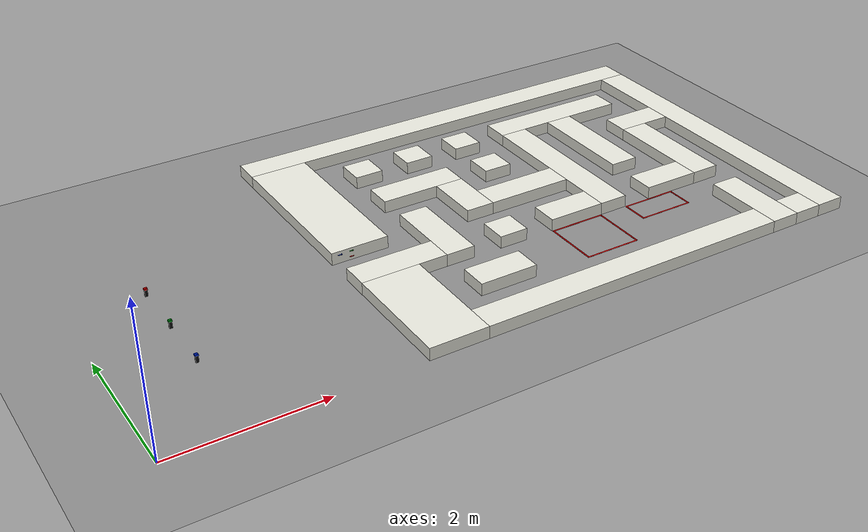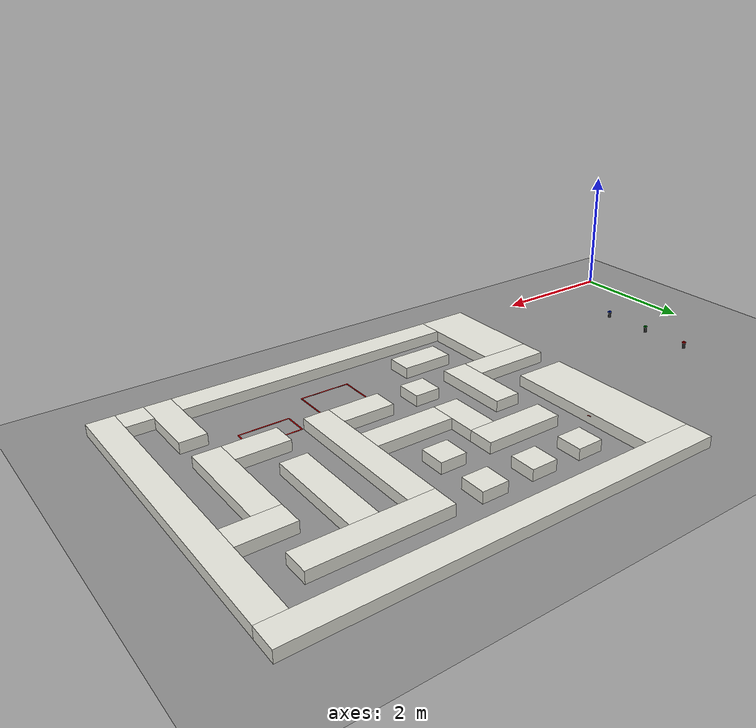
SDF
<sdf version="1.9">
 <world name="ros2_world">
  <model name="ground_plane">
   <static>true</static>
   <link name="link">
    <collision name="collision">
     <geometry><plane><normal>0 0 1</normal><size>30 30</size></plane></geometry>
    </collision>
    <visual name="visual">
     <geometry><plane><normal>0 0 1</normal><size>30 30</size></plane></geometry>
     <material><ambient>0.55 0.55 0.55 1</ambient><diffuse>0.55 0.55 0.55 1</diffuse></material>
    </visual>
   </link>
  </model>
  <model name="paredes">
   <static>true</static>
   <link name="bloque_0">
    <pose>6.4 5 0.085 0 0 0</pose>
    <collision name="colision"><geometry><box><size>6.4 0.4 0.17</size></box></geometry></collision>
    <visual name="visual">
     <geometry><box><size>6.4 0.4 0.17</size></box></geometry>
     <material><ambient>0.9 0.9 0.86 1</ambient><diffuse>0.9 0.9 0.86 1</diffuse></material>
    </visual>
   </link>
   <link name="bloque_1">
    <pose>3.6 3.6 0.085 0 0 0</pose>
    <collision name="colision"><geometry><box><size>0.8 2.4 0.17</size></box></geometry></collision>
    <visual name="visual">
     <geometry><box><size>0.8 2.4 0.17</size></box></geometry>
     <material><ambient>0.9 0.9 0.86 1</ambient><diffuse>0.9 0.9 0.86 1</diffuse></material>
    </visual>
   </link>
   <link name="bloque_2">
    <pose>9.4 2.4 0.085 0 0 0</pose>
    <collision name="colision"><geometry><box><size>0.4 4.8 0.17</size></box></geometry></collision>
    <visual name="visual">
     <geometry><box><size>0.4 4.8 0.17</size></box></geometry>
     <material><ambient>0.9 0.9 0.86 1</ambient><diffuse>0.9 0.9 0.86 1</diffuse></material>
    </visual>
   </link>
   <link name="bloque_3">
    <pose>4.6 4.2 0.085 0 0 0</pose>
    <collision name="colision"><geometry><box><size>0.4 0.4 0.17</size></box></geometry></collision>
    <visual name="visual">
     <geometry><box><size>0.4 0.4 0.17</size></box></geometry>
     <material><ambient>0.9 0.9 0.86 1</ambient><diffuse>0.9 0.9 0.86 1</diffuse></material>
    </visual>
   </link>
   <link name="bloque_4">
    <pose>5.4 4.2 0.085 0 0 0</pose>
    <collision name="colision"><geometry><box><size>0.4 0.4 0.17</size></box></geometry></collision>
    <visual name="visual">
     <geometry><box><size>0.4 0.4 0.17</size></box></geometry>
     <material><ambient>0.9 0.9 0.86 1</ambient><diffuse>0.9 0.9 0.86 1</diffuse></material>
    </visual>
   </link>
   <link name="bloque_5">
    <pose>6.2 4.2 0.085 0 0 0</pose>
    <collision name="colision"><geometry><box><size>0.4 0.4 0.17</size></box></geometry></collision>
    <visual name="visual">
     <geometry><box><size>0.4 0.4 0.17</size></box></geometry>
     <material><ambient>0.9 0.9 0.86 1</ambient><diffuse>0.9 0.9 0.86 1</diffuse></material>
    </visual>
   </link>
   <link name="bloque_6">
    <pose>7.8 4.2 0.085 0 0 0</pose>
    <collision name="colision"><geometry><box><size>2 0.4 0.17</size></box></geometry></collision>
    <visual name="visual">
     <geometry><box><size>2 0.4 0.17</size></box></geometry>
     <material><ambient>0.9 0.9 0.86 1</ambient><diffuse>0.9 0.9 0.86 1</diffuse></material>
    </visual>
   </link>
   <link name="bloque_7">
    <pose>7 2.8 0.085 0 0 0</pose>
    <collision name="colision"><geometry><box><size>0.4 2.4 0.17</size></box></geometry></collision>
    <visual name="visual">
     <geometry><box><size>0.4 2.4 0.17</size></box></geometry>
     <material><ambient>0.9 0.9 0.86 1</ambient><diffuse>0.9 0.9 0.86 1</diffuse></material>
    </visual>
   </link>
   <link name="bloque_8">
    <pose>7.8 3.2 0.085 0 0 0</pose>
    <collision name="colision"><geometry><box><size>0.4 1.6 0.17</size></box></geometry></collision>
    <visual name="visual">
     <geometry><box><size>0.4 1.6 0.17</size></box></geometry>
     <material><ambient>0.9 0.9 0.86 1</ambient><diffuse>0.9 0.9 0.86 1</diffuse></material>
    </visual>
   </link>
   <link name="bloque_9">
    <pose>5 3.4 0.085 0 0 0</pose>
    <collision name="colision"><geometry><box><size>1.2 0.4 0.17</size></box></geometry></collision>
    <visual name="visual">
     <geometry><box><size>1.2 0.4 0.17</size></box></geometry>
     <material><ambient>0.9 0.9 0.86 1</ambient><diffuse>0.9 0.9 0.86 1</diffuse></material>
    </visual>
   </link>
   <link name="bloque_10">
    <pose>6.2 3.4 0.085 0 0 0</pose>
    <collision name="colision"><geometry><box><size>0.4 0.4 0.17</size></box></geometry></collision>
    <visual name="visual">
     <geometry><box><size>0.4 0.4 0.17</size></box></geometry>
     <material><ambient>0.9 0.9 0.86 1</ambient><diffuse>0.9 0.9 0.86 1</diffuse></material>
    </visual>
   </link>
   <link name="bloque_11">
    <pose>8.8 3.4 0.085 0 0 0</pose>
    <collision name="colision"><geometry><box><size>0.8 0.4 0.17</size></box></geometry></collision>
    <visual name="visual">
     <geometry><box><size>0.8 0.4 0.17</size></box></geometry>
     <material><ambient>0.9 0.9 0.86 1</ambient><diffuse>0.9 0.9 0.86 1</diffuse></material>
    </visual>
   </link>
   <link name="bloque_12">
    <pose>5.4 2.8 0.085 0 0 0</pose>
    <collision name="colision"><geometry><box><size>0.4 0.8 0.17</size></box></geometry></collision>
    <visual name="visual">
     <geometry><box><size>0.4 0.8 0.17</size></box></geometry>
     <material><ambient>0.9 0.9 0.86 1</ambient><diffuse>0.9 0.9 0.86 1</diffuse></material>
    </visual>
   </link>
   <link name="bloque_13">
    <pose>8.6 2.4 0.085 0 0 0</pose>
    <collision name="colision"><geometry><box><size>0.4 1.6 0.17</size></box></geometry></collision>
    <visual name="visual">
     <geometry><box><size>0.4 1.6 0.17</size></box></geometry>
     <material><ambient>0.9 0.9 0.86 1</ambient><diffuse>0.9 0.9 0.86 1</diffuse></material>
    </visual>
   </link>
   <link name="bloque_14">
    <pose>4.6 2.2 0.085 0 0 0</pose>
    <collision name="colision"><geometry><box><size>0.4 1.2 0.17</size></box></geometry></collision>
    <visual name="visual">
     <geometry><box><size>0.4 1.2 0.17</size></box></geometry>
     <material><ambient>0.9 0.9 0.86 1</ambient><diffuse>0.9 0.9 0.86 1</diffuse></material>
    </visual>
   </link>
   <link name="bloque_15">
    <pose>6.2 2.6 0.085 0 0 0</pose>
    <collision name="colision"><geometry><box><size>1.2 0.4 0.17</size></box></geometry></collision>
    <visual name="visual">
     <geometry><box><size>1.2 0.4 0.17</size></box></geometry>
     <material><ambient>0.9 0.9 0.86 1</ambient><diffuse>0.9 0.9 0.86 1</diffuse></material>
    </visual>
   </link>
   <link name="bloque_16">
    <pose>3.8 1.8 0.085 0 0 0</pose>
    <collision name="colision"><geometry><box><size>1.2 0.4 0.17</size></box></geometry></collision>
    <visual name="visual">
     <geometry><box><size>1.2 0.4 0.17</size></box></geometry>
     <material><ambient>0.9 0.9 0.86 1</ambient><diffuse>0.9 0.9 0.86 1</diffuse></material>
    </visual>
   </link>
   <link name="bloque_17">
    <pose>5.4 1.8 0.085 0 0 0</pose>
    <collision name="colision"><geometry><box><size>0.4 0.4 0.17</size></box></geometry></collision>
    <visual name="visual">
     <geometry><box><size>0.4 0.4 0.17</size></box></geometry>
     <material><ambient>0.9 0.9 0.86 1</ambient><diffuse>0.9 0.9 0.86 1</diffuse></material>
    </visual>
   </link>
   <link name="bloque_18">
    <pose>6.4 1.8 0.085 0 0 0</pose>
    <collision name="colision"><geometry><box><size>0.8 0.4 0.17</size></box></geometry></collision>
    <visual name="visual">
     <geometry><box><size>0.8 0.4 0.17</size></box></geometry>
     <material><ambient>0.9 0.9 0.86 1</ambient><diffuse>0.9 0.9 0.86 1</diffuse></material>
    </visual>
   </link>
   <link name="bloque_19">
    <pose>8 1.8 0.085 0 0 0</pose>
    <collision name="colision"><geometry><box><size>0.8 0.4 0.17</size></box></geometry></collision>
    <visual name="visual">
     <geometry><box><size>0.8 0.4 0.17</size></box></geometry>
     <material><ambient>0.9 0.9 0.86 1</ambient><diffuse>0.9 0.9 0.86 1</diffuse></material>
    </visual>
   </link>
   <link name="bloque_20">
    <pose>3.6 0.8 0.085 0 0 0</pose>
    <collision name="colision"><geometry><box><size>0.8 1.6 0.17</size></box></geometry></collision>
    <visual name="visual">
     <geometry><box><size>0.8 1.6 0.17</size></box></geometry>
     <material><ambient>0.9 0.9 0.86 1</ambient><diffuse>0.9 0.9 0.86 1</diffuse></material>
    </visual>
   </link>
   <link name="bloque_21">
    <pose>4.8 1 0.085 0 0 0</pose>
    <collision name="colision"><geometry><box><size>0.8 0.4 0.17</size></box></geometry></collision>
    <visual name="visual">
     <geometry><box><size>0.8 0.4 0.17</size></box></geometry>
     <material><ambient>0.9 0.9 0.86 1</ambient><diffuse>0.9 0.9 0.86 1</diffuse></material>
    </visual>
   </link>
   <link name="bloque_22">
    <pose>8.6 0.6 0.085 0 0 0</pose>
    <collision name="colision"><geometry><box><size>0.4 1.2 0.17</size></box></geometry></collision>
    <visual name="visual">
     <geometry><box><size>0.4 1.2 0.17</size></box></geometry>
     <material><ambient>0.9 0.9 0.86 1</ambient><diffuse>0.9 0.9 0.86 1</diffuse></material>
    </visual>
   </link>
   <link name="bloque_23">
    <pose>6.2 0.2 0.085 0 0 0</pose>
    <collision name="colision"><geometry><box><size>4.4 0.4 0.17</size></box></geometry></collision>
    <visual name="visual">
     <geometry><box><size>4.4 0.4 0.17</size></box></geometry>
     <material><ambient>0.9 0.9 0.86 1</ambient><diffuse>0.9 0.9 0.86 1</diffuse></material>
    </visual>
   </link>
   <link name="bloque_24">
    <pose>9 0.2 0.085 0 0 0</pose>
    <collision name="colision"><geometry><box><size>0.4 0.4 0.17</size></box></geometry></collision>
    <visual name="visual">
     <geometry><box><size>0.4 0.4 0.17</size></box></geometry>
     <material><ambient>0.9 0.9 0.86 1</ambient><diffuse>0.9 0.9 0.86 1</diffuse></material>
    </visual>
   </link>
  </model>
  <model name="zonas_prohibidas">
   <static>true</static>
   <link name="zona_0">
    <visual name="norte">
     <pose>6.4 1.585 0.0005 0 0 0</pose>
     <geometry><box><size>0.79 0.02 0.001</size></box></geometry>
     <material><ambient>0.85 0 0 1</ambient><diffuse>0.85 0 0 1</diffuse></material>
    </visual>
    <visual name="sur">
     <pose>6.4 0.815 0.0005 0 0 0</pose>
     <geometry><box><size>0.79 0.02 0.001</size></box></geometry>
     <material><ambient>0.85 0 0 1</ambient><diffuse>0.85 0 0 1</diffuse></material>
    </visual>
    <visual name="este">
     <pose>6.785 1.2 0.0005 0 0 0</pose>
     <geometry><box><size>0.02 0.75 0.001</size></box></geometry>
     <material><ambient>0.85 0 0 1</ambient><diffuse>0.85 0 0 1</diffuse></material>
    </visual>
    <visual name="oeste">
     <pose>6.015 1.2 0.0005 0 0 0</pose>
     <geometry><box><size>0.02 0.75 0.001</size></box></geometry>
     <material><ambient>0.85 0 0 1</ambient><diffuse>0.85 0 0 1</diffuse></material>
    </visual>
   </link>
   <link name="zona_1">
    <visual name="norte">
     <pose>7.6 1.585 0.0005 0 0 0</pose>
     <geometry><box><size>0.79 0.02 0.001</size></box></geometry>
     <material><ambient>0.85 0 0 1</ambient><diffuse>0.85 0 0 1</diffuse></material>
    </visual>
    <visual name="sur">
     <pose>7.6 1.215 0.0005 0 0 0</pose>
     <geometry><box><size>0.79 0.02 0.001</size></box></geometry>
     <material><ambient>0.85 0 0 1</ambient><diffuse>0.85 0 0 1</diffuse></material>
    </visual>
    <visual name="este">
     <pose>7.985 1.4 0.0005 0 0 0</pose>
     <geometry><box><size>0.02 0.35 0.001</size></box></geometry>
     <material><ambient>0.85 0 0 1</ambient><diffuse>0.85 0 0 1</diffuse></material>
    </visual>
    <visual name="oeste">
     <pose>7.215 1.4 0.0005 0 0 0</pose>
     <geometry><box><size>0.02 0.35 0.001</size></box></geometry>
     <material><ambient>0.85 0 0 1</ambient><diffuse>0.85 0 0 1</diffuse></material>
    </visual>
   </link>
  </model>
  <model name="flechas">
   <static>true</static>
   <link name="flecha_5">
    <pose>4.00125 3.8 0.115 0 -0.10472 1.5708</pose>
    <visual name="p0">
     <pose>-0.0065 0 0 0 0 0</pose>
     <geometry><box><size>0.047 0.0015 0.01</size></box></geometry>
     <material><ambient>1 0 0 1</ambient><diffuse>1 0 0 1</diffuse></material>
    </visual>
    <visual name="p1">
     <pose>0.01726 0 0 0 0 0</pose>
     <geometry><box><size>0.00052 0.0015 0.029</size></box></geometry>
     <material><ambient>1 0 0 1</ambient><diffuse>1 0 0 1</diffuse></material>
    </visual>
    <visual name="p2">
     <pose>0.01778 0 0 0 0 0</pose>
     <geometry><box><size>0.00052 0.0015 0.02784</size></box></geometry>
     <material><ambient>1 0 0 1</ambient><diffuse>1 0 0 1</diffuse></material>
    </visual>
    <visual name="p3">
     <pose>0.0183 0 0 0 0 0</pose>
     <geometry><box><size>0.00052 0.0015 0.02668</size></box></geometry>
     <material><ambient>1 0 0 1</ambient><diffuse>1 0 0 1</diffuse></material>
    </visual>
    <visual name="p4">
     <pose>0.01882 0 0 0 0 0</pose>
     <geometry><box><size>0.00052 0.0015 0.02552</size></box></geometry>
     <material><ambient>1 0 0 1</ambient><diffuse>1 0 0 1</diffuse></material>
    </visual>
    <visual name="p5">
     <pose>0.01934 0 0 0 0 0</pose>
     <geometry><box><size>0.00052 0.0015 0.02436</size></box></geometry>
     <material><ambient>1 0 0 1</ambient><diffuse>1 0 0 1</diffuse></material>
    </visual>
    <visual name="p6">
     <pose>0.01986 0 0 0 0 0</pose>
     <geometry><box><size>0.00052 0.0015 0.0232</size></box></geometry>
     <material><ambient>1 0 0 1</ambient><diffuse>1 0 0 1</diffuse></material>
    </visual>
    <visual name="p7">
     <pose>0.02038 0 0 0 0 0</pose>
     <geometry><box><size>0.00052 0.0015 0.02204</size></box></geometry>
     <material><ambient>1 0 0 1</ambient><diffuse>1 0 0 1</diffuse></material>
    </visual>
    <visual name="p8">
     <pose>0.0209 0 0 0 0 0</pose>
     <geometry><box><size>0.00052 0.0015 0.02088</size></box></geometry>
     <material><ambient>1 0 0 1</ambient><diffuse>1 0 0 1</diffuse></material>
    </visual>
    <visual name="p9">
     <pose>0.02142 0 0 0 0 0</pose>
     <geometry><box><size>0.00052 0.0015 0.01972</size></box></geometry>
     <material><ambient>1 0 0 1</ambient><diffuse>1 0 0 1</diffuse></material>
    </visual>
    <visual name="p10">
     <pose>0.02194 0 0 0 0 0</pose>
     <geometry><box><size>0.00052 0.0015 0.01856</size></box></geometry>
     <material><ambient>1 0 0 1</ambient><diffuse>1 0 0 1</diffuse></material>
    </visual>
    <visual name="p11">
     <pose>0.02246 0 0 0 0 0</pose>
     <geometry><box><size>0.00052 0.0015 0.0174</size></box></geometry>
     <material><ambient>1 0 0 1</ambient><diffuse>1 0 0 1</diffuse></material>
    </visual>
    <visual name="p12">
     <pose>0.02298 0 0 0 0 0</pose>
     <geometry><box><size>0.00052 0.0015 0.01624</size></box></geometry>
     <material><ambient>1 0 0 1</ambient><diffuse>1 0 0 1</diffuse></material>
    </visual>
    <visual name="p13">
     <pose>0.0235 0 0 0 0 0</pose>
     <geometry><box><size>0.00052 0.0015 0.01508</size></box></geometry>
     <material><ambient>1 0 0 1</ambient><diffuse>1 0 0 1</diffuse></material>
    </visual>
    <visual name="p14">
     <pose>0.02402 0 0 0 0 0</pose>
     <geometry><box><size>0.00052 0.0015 0.01392</size></box></geometry>
     <material><ambient>1 0 0 1</ambient><diffuse>1 0 0 1</diffuse></material>
    </visual>
    <visual name="p15">
     <pose>0.02454 0 0 0 0 0</pose>
     <geometry><box><size>0.00052 0.0015 0.01276</size></box></geometry>
     <material><ambient>1 0 0 1</ambient><diffuse>1 0 0 1</diffuse></material>
    </visual>
    <visual name="p16">
     <pose>0.02506 0 0 0 0 0</pose>
     <geometry><box><size>0.00052 0.0015 0.0116</size></box></geometry>
     <material><ambient>1 0 0 1</ambient><diffuse>1 0 0 1</diffuse></material>
    </visual>
    <visual name="p17">
     <pose>0.02558 0 0 0 0 0</pose>
     <geometry><box><size>0.00052 0.0015 0.01044</size></box></geometry>
     <material><ambient>1 0 0 1</ambient><diffuse>1 0 0 1</diffuse></material>
    </visual>
    <visual name="p18">
     <pose>0.0261 0 0 0 0 0</pose>
     <geometry><box><size>0.00052 0.0015 0.00928</size></box></geometry>
     <material><ambient>1 0 0 1</ambient><diffuse>1 0 0 1</diffuse></material>
    </visual>
    <visual name="p19">
     <pose>0.02662 0 0 0 0 0</pose>
     <geometry><box><size>0.00052 0.0015 0.00812</size></box></geometry>
     <material><ambient>1 0 0 1</ambient><diffuse>1 0 0 1</diffuse></material>
    </visual>
    <visual name="p20">
     <pose>0.02714 0 0 0 0 0</pose>
     <geometry><box><size>0.00052 0.0015 0.00696</size></box></geometry>
     <material><ambient>1 0 0 1</ambient><diffuse>1 0 0 1</diffuse></material>
    </visual>
    <visual name="p21">
     <pose>0.02766 0 0 0 0 0</pose>
     <geometry><box><size>0.00052 0.0015 0.0058</size></box></geometry>
     <material><ambient>1 0 0 1</ambient><diffuse>1 0 0 1</diffuse></material>
    </visual>
    <visual name="p22">
     <pose>0.02818 0 0 0 0 0</pose>
     <geometry><box><size>0.00052 0.0015 0.00464</size></box></geometry>
     <material><ambient>1 0 0 1</ambient><diffuse>1 0 0 1</diffuse></material>
    </visual>
    <visual name="p23">
     <pose>0.0287 0 0 0 0 0</pose>
     <geometry><box><size>0.00052 0.0015 0.00348</size></box></geometry>
     <material><ambient>1 0 0 1</ambient><diffuse>1 0 0 1</diffuse></material>
    </visual>
    <visual name="p24">
     <pose>0.02922 0 0 0 0 0</pose>
     <geometry><box><size>0.00052 0.0015 0.00232</size></box></geometry>
     <material><ambient>1 0 0 1</ambient><diffuse>1 0 0 1</diffuse></material>
    </visual>
    <visual name="p25">
     <pose>0.02974 0 0 0 0 0</pose>
     <geometry><box><size>0.00052 0.0015 0.00116</size></box></geometry>
     <material><ambient>1 0 0 1</ambient><diffuse>1 0 0 1</diffuse></material>
    </visual>
   </link>
   <link name="flecha_11">
    <pose>3.32 2.39875 0.115 0 0 0</pose>
    <visual name="p0">
     <pose>-0.0065 0 0 0 0 0</pose>
     <geometry><box><size>0.047 0.0015 0.01</size></box></geometry>
     <material><ambient>0 0.2 1 1</ambient><diffuse>0 0.2 1 1</diffuse></material>
    </visual>
    <visual name="p1">
     <pose>0.01726 0 0 0 0 0</pose>
     <geometry><box><size>0.00052 0.0015 0.029</size></box></geometry>
     <material><ambient>0 0.2 1 1</ambient><diffuse>0 0.2 1 1</diffuse></material>
    </visual>
    <visual name="p2">
     <pose>0.01778 0 0 0 0 0</pose>
     <geometry><box><size>0.00052 0.0015 0.02784</size></box></geometry>
     <material><ambient>0 0.2 1 1</ambient><diffuse>0 0.2 1 1</diffuse></material>
    </visual>
    <visual name="p3">
     <pose>0.0183 0 0 0 0 0</pose>
     <geometry><box><size>0.00052 0.0015 0.02668</size></box></geometry>
     <material><ambient>0 0.2 1 1</ambient><diffuse>0 0.2 1 1</diffuse></material>
    </visual>
    <visual name="p4">
     <pose>0.01882 0 0 0 0 0</pose>
     <geometry><box><size>0.00052 0.0015 0.02552</size></box></geometry>
     <material><ambient>0 0.2 1 1</ambient><diffuse>0 0.2 1 1</diffuse></material>
    </visual>
    <visual name="p5">
     <pose>0.01934 0 0 0 0 0</pose>
     <geometry><box><size>0.00052 0.0015 0.02436</size></box></geometry>
     <material><ambient>0 0.2 1 1</ambient><diffuse>0 0.2 1 1</diffuse></material>
    </visual>
    <visual name="p6">
     <pose>0.01986 0 0 0 0 0</pose>
     <geometry><box><size>0.00052 0.0015 0.0232</size></box></geometry>
     <material><ambient>0 0.2 1 1</ambient><diffuse>0 0.2 1 1</diffuse></material>
    </visual>
    <visual name="p7">
     <pose>0.02038 0 0 0 0 0</pose>
     <geometry><box><size>0.00052 0.0015 0.02204</size></box></geometry>
     <material><ambient>0 0.2 1 1</ambient><diffuse>0 0.2 1 1</diffuse></material>
    </visual>
    <visual name="p8">
     <pose>0.0209 0 0 0 0 0</pose>
     <geometry><box><size>0.00052 0.0015 0.02088</size></box></geometry>
     <material><ambient>0 0.2 1 1</ambient><diffuse>0 0.2 1 1</diffuse></material>
    </visual>
    <visual name="p9">
     <pose>0.02142 0 0 0 0 0</pose>
     <geometry><box><size>0.00052 0.0015 0.01972</size></box></geometry>
     <material><ambient>0 0.2 1 1</ambient><diffuse>0 0.2 1 1</diffuse></material>
    </visual>
    <visual name="p10">
     <pose>0.02194 0 0 0 0 0</pose>
     <geometry><box><size>0.00052 0.0015 0.01856</size></box></geometry>
     <material><ambient>0 0.2 1 1</ambient><diffuse>0 0.2 1 1</diffuse></material>
    </visual>
    <visual name="p11">
     <pose>0.02246 0 0 0 0 0</pose>
     <geometry><box><size>0.00052 0.0015 0.0174</size></box></geometry>
     <material><ambient>0 0.2 1 1</ambient><diffuse>0 0.2 1 1</diffuse></material>
    </visual>
    <visual name="p12">
     <pose>0.02298 0 0 0 0 0</pose>
     <geometry><box><size>0.00052 0.0015 0.01624</size></box></geometry>
     <material><ambient>0 0.2 1 1</ambient><diffuse>0 0.2 1 1</diffuse></material>
    </visual>
    <visual name="p13">
     <pose>0.0235 0 0 0 0 0</pose>
     <geometry><box><size>0.00052 0.0015 0.01508</size></box></geometry>
     <material><ambient>0 0.2 1 1</ambient><diffuse>0 0.2 1 1</diffuse></material>
    </visual>
    <visual name="p14">
     <pose>0.02402 0 0 0 0 0</pose>
     <geometry><box><size>0.00052 0.0015 0.01392</size></box></geometry>
     <material><ambient>0 0.2 1 1</ambient><diffuse>0 0.2 1 1</diffuse></material>
    </visual>
    <visual name="p15">
     <pose>0.02454 0 0 0 0 0</pose>
     <geometry><box><size>0.00052 0.0015 0.01276</size></box></geometry>
     <material><ambient>0 0.2 1 1</ambient><diffuse>0 0.2 1 1</diffuse></material>
    </visual>
    <visual name="p16">
     <pose>0.02506 0 0 0 0 0</pose>
     <geometry><box><size>0.00052 0.0015 0.0116</size></box></geometry>
     <material><ambient>0 0.2 1 1</ambient><diffuse>0 0.2 1 1</diffuse></material>
    </visual>
    <visual name="p17">
     <pose>0.02558 0 0 0 0 0</pose>
     <geometry><box><size>0.00052 0.0015 0.01044</size></box></geometry>
     <material><ambient>0 0.2 1 1</ambient><diffuse>0 0.2 1 1</diffuse></material>
    </visual>
    <visual name="p18">
     <pose>0.0261 0 0 0 0 0</pose>
     <geometry><box><size>0.00052 0.0015 0.00928</size></box></geometry>
     <material><ambient>0 0.2 1 1</ambient><diffuse>0 0.2 1 1</diffuse></material>
    </visual>
    <visual name="p19">
     <pose>0.02662 0 0 0 0 0</pose>
     <geometry><box><size>0.00052 0.0015 0.00812</size></box></geometry>
     <material><ambient>0 0.2 1 1</ambient><diffuse>0 0.2 1 1</diffuse></material>
    </visual>
    <visual name="p20">
     <pose>0.02714 0 0 0 0 0</pose>
     <geometry><box><size>0.00052 0.0015 0.00696</size></box></geometry>
     <material><ambient>0 0.2 1 1</ambient><diffuse>0 0.2 1 1</diffuse></material>
    </visual>
    <visual name="p21">
     <pose>0.02766 0 0 0 0 0</pose>
     <geometry><box><size>0.00052 0.0015 0.0058</size></box></geometry>
     <material><ambient>0 0.2 1 1</ambient><diffuse>0 0.2 1 1</diffuse></material>
    </visual>
    <visual name="p22">
     <pose>0.02818 0 0 0 0 0</pose>
     <geometry><box><size>0.00052 0.0015 0.00464</size></box></geometry>
     <material><ambient>0 0.2 1 1</ambient><diffuse>0 0.2 1 1</diffuse></material>
    </visual>
    <visual name="p23">
     <pose>0.0287 0 0 0 0 0</pose>
     <geometry><box><size>0.00052 0.0015 0.00348</size></box></geometry>
     <material><ambient>0 0.2 1 1</ambient><diffuse>0 0.2 1 1</diffuse></material>
    </visual>
    <visual name="p24">
     <pose>0.02922 0 0 0 0 0</pose>
     <geometry><box><size>0.00052 0.0015 0.00232</size></box></geometry>
     <material><ambient>0 0.2 1 1</ambient><diffuse>0 0.2 1 1</diffuse></material>
    </visual>
    <visual name="p25">
     <pose>0.02974 0 0 0 0 0</pose>
     <geometry><box><size>0.00052 0.0015 0.00116</size></box></geometry>
     <material><ambient>0 0.2 1 1</ambient><diffuse>0 0.2 1 1</diffuse></material>
    </visual>
   </link>
   <link name="flecha_12">
    <pose>3.48 2.39875 0.125 0 0 0</pose>
    <visual name="p0">
     <pose>-0.0065 0 0 0 0 0</pose>
     <geometry><box><size>0.047 0.0015 0.01</size></box></geometry>
     <material><ambient>0 0.7 0.1 1</ambient><diffuse>0 0.7 0.1 1</diffuse></material>
    </visual>
    <visual name="p1">
     <pose>0.01726 0 0 0 0 0</pose>
     <geometry><box><size>0.00052 0.0015 0.029</size></box></geometry>
     <material><ambient>0 0.7 0.1 1</ambient><diffuse>0 0.7 0.1 1</diffuse></material>
    </visual>
    <visual name="p2">
     <pose>0.01778 0 0 0 0 0</pose>
     <geometry><box><size>0.00052 0.0015 0.02784</size></box></geometry>
     <material><ambient>0 0.7 0.1 1</ambient><diffuse>0 0.7 0.1 1</diffuse></material>
    </visual>
    <visual name="p3">
     <pose>0.0183 0 0 0 0 0</pose>
     <geometry><box><size>0.00052 0.0015 0.02668</size></box></geometry>
     <material><ambient>0 0.7 0.1 1</ambient><diffuse>0 0.7 0.1 1</diffuse></material>
    </visual>
    <visual name="p4">
     <pose>0.01882 0 0 0 0 0</pose>
     <geometry><box><size>0.00052 0.0015 0.02552</size></box></geometry>
     <material><ambient>0 0.7 0.1 1</ambient><diffuse>0 0.7 0.1 1</diffuse></material>
    </visual>
    <visual name="p5">
     <pose>0.01934 0 0 0 0 0</pose>
     <geometry><box><size>0.00052 0.0015 0.02436</size></box></geometry>
     <material><ambient>0 0.7 0.1 1</ambient><diffuse>0 0.7 0.1 1</diffuse></material>
    </visual>
    <visual name="p6">
     <pose>0.01986 0 0 0 0 0</pose>
     <geometry><box><size>0.00052 0.0015 0.0232</size></box></geometry>
     <material><ambient>0 0.7 0.1 1</ambient><diffuse>0 0.7 0.1 1</diffuse></material>
    </visual>
    <visual name="p7">
     <pose>0.02038 0 0 0 0 0</pose>
     <geometry><box><size>0.00052 0.0015 0.02204</size></box></geometry>
     <material><ambient>0 0.7 0.1 1</ambient><diffuse>0 0.7 0.1 1</diffuse></material>
    </visual>
    <visual name="p8">
     <pose>0.0209 0 0 0 0 0</pose>
     <geometry><box><size>0.00052 0.0015 0.02088</size></box></geometry>
     <material><ambient>0 0.7 0.1 1</ambient><diffuse>0 0.7 0.1 1</diffuse></material>
    </visual>
    <visual name="p9">
     <pose>0.02142 0 0 0 0 0</pose>
     <geometry><box><size>0.00052 0.0015 0.01972</size></box></geometry>
     <material><ambient>0 0.7 0.1 1</ambient><diffuse>0 0.7 0.1 1</diffuse></material>
    </visual>
    <visual name="p10">
     <pose>0.02194 0 0 0 0 0</pose>
     <geometry><box><size>0.00052 0.0015 0.01856</size></box></geometry>
     <material><ambient>0 0.7 0.1 1</ambient><diffuse>0 0.7 0.1 1</diffuse></material>
    </visual>
    <visual name="p11">
     <pose>0.02246 0 0 0 0 0</pose>
     <geometry><box><size>0.00052 0.0015 0.0174</size></box></geometry>
     <material><ambient>0 0.7 0.1 1</ambient><diffuse>0 0.7 0.1 1</diffuse></material>
    </visual>
    <visual name="p12">
     <pose>0.02298 0 0 0 0 0</pose>
     <geometry><box><size>0.00052 0.0015 0.01624</size></box></geometry>
     <material><ambient>0 0.7 0.1 1</ambient><diffuse>0 0.7 0.1 1</diffuse></material>
    </visual>
    <visual name="p13">
     <pose>0.0235 0 0 0 0 0</pose>
     <geometry><box><size>0.00052 0.0015 0.01508</size></box></geometry>
     <material><ambient>0 0.7 0.1 1</ambient><diffuse>0 0.7 0.1 1</diffuse></material>
    </visual>
    <visual name="p14">
     <pose>0.02402 0 0 0 0 0</pose>
     <geometry><box><size>0.00052 0.0015 0.01392</size></box></geometry>
     <material><ambient>0 0.7 0.1 1</ambient><diffuse>0 0.7 0.1 1</diffuse></material>
    </visual>
    <visual name="p15">
     <pose>0.02454 0 0 0 0 0</pose>
     <geometry><box><size>0.00052 0.0015 0.01276</size></box></geometry>
     <material><ambient>0 0.7 0.1 1</ambient><diffuse>0 0.7 0.1 1</diffuse></material>
    </visual>
    <visual name="p16">
     <pose>0.02506 0 0 0 0 0</pose>
     <geometry><box><size>0.00052 0.0015 0.0116</size></box></geometry>
     <material><ambient>0 0.7 0.1 1</ambient><diffuse>0 0.7 0.1 1</diffuse></material>
    </visual>
    <visual name="p17">
     <pose>0.02558 0 0 0 0 0</pose>
     <geometry><box><size>0.00052 0.0015 0.01044</size></box></geometry>
     <material><ambient>0 0.7 0.1 1</ambient><diffuse>0 0.7 0.1 1</diffuse></material>
    </visual>
    <visual name="p18">
     <pose>0.0261 0 0 0 0 0</pose>
     <geometry><box><size>0.00052 0.0015 0.00928</size></box></geometry>
     <material><ambient>0 0.7 0.1 1</ambient><diffuse>0 0.7 0.1 1</diffuse></material>
    </visual>
    <visual name="p19">
     <pose>0.02662 0 0 0 0 0</pose>
     <geometry><box><size>0.00052 0.0015 0.00812</size></box></geometry>
     <material><ambient>0 0.7 0.1 1</ambient><diffuse>0 0.7 0.1 1</diffuse></material>
    </visual>
    <visual name="p20">
     <pose>0.02714 0 0 0 0 0</pose>
     <geometry><box><size>0.00052 0.0015 0.00696</size></box></geometry>
     <material><ambient>0 0.7 0.1 1</ambient><diffuse>0 0.7 0.1 1</diffuse></material>
    </visual>
    <visual name="p21">
     <pose>0.02766 0 0 0 0 0</pose>
     <geometry><box><size>0.00052 0.0015 0.0058</size></box></geometry>
     <material><ambient>0 0.7 0.1 1</ambient><diffuse>0 0.7 0.1 1</diffuse></material>
    </visual>
    <visual name="p22">
     <pose>0.02818 0 0 0 0 0</pose>
     <geometry><box><size>0.00052 0.0015 0.00464</size></box></geometry>
     <material><ambient>0 0.7 0.1 1</ambient><diffuse>0 0.7 0.1 1</diffuse></material>
    </visual>
    <visual name="p23">
     <pose>0.0287 0 0 0 0 0</pose>
     <geometry><box><size>0.00052 0.0015 0.00348</size></box></geometry>
     <material><ambient>0 0.7 0.1 1</ambient><diffuse>0 0.7 0.1 1</diffuse></material>
    </visual>
    <visual name="p24">
     <pose>0.02922 0 0 0 0 0</pose>
     <geometry><box><size>0.00052 0.0015 0.00232</size></box></geometry>
     <material><ambient>0 0.7 0.1 1</ambient><diffuse>0 0.7 0.1 1</diffuse></material>
    </visual>
    <visual name="p25">
     <pose>0.02974 0 0 0 0 0</pose>
     <geometry><box><size>0.00052 0.0015 0.00116</size></box></geometry>
     <material><ambient>0 0.7 0.1 1</ambient><diffuse>0 0.7 0.1 1</diffuse></material>
    </visual>
   </link>
   <link name="flecha_13">
    <pose>3.48 2.39875 0.045 0 0 0</pose>
    <visual name="p0">
     <pose>-0.0065 0 0 0 0 0</pose>
     <geometry><box><size>0.047 0.0015 0.01</size></box></geometry>
     <material><ambient>1 0 0 1</ambient><diffuse>1 0 0 1</diffuse></material>
    </visual>
    <visual name="p1">
     <pose>0.01726 0 0 0 0 0</pose>
     <geometry><box><size>0.00052 0.0015 0.029</size></box></geometry>
     <material><ambient>1 0 0 1</ambient><diffuse>1 0 0 1</diffuse></material>
    </visual>
    <visual name="p2">
     <pose>0.01778 0 0 0 0 0</pose>
     <geometry><box><size>0.00052 0.0015 0.02784</size></box></geometry>
     <material><ambient>1 0 0 1</ambient><diffuse>1 0 0 1</diffuse></material>
    </visual>
    <visual name="p3">
     <pose>0.0183 0 0 0 0 0</pose>
     <geometry><box><size>0.00052 0.0015 0.02668</size></box></geometry>
     <material><ambient>1 0 0 1</ambient><diffuse>1 0 0 1</diffuse></material>
    </visual>
    <visual name="p4">
     <pose>0.01882 0 0 0 0 0</pose>
     <geometry><box><size>0.00052 0.0015 0.02552</size></box></geometry>
     <material><ambient>1 0 0 1</ambient><diffuse>1 0 0 1</diffuse></material>
    </visual>
    <visual name="p5">
     <pose>0.01934 0 0 0 0 0</pose>
     <geometry><box><size>0.00052 0.0015 0.02436</size></box></geometry>
     <material><ambient>1 0 0 1</ambient><diffuse>1 0 0 1</diffuse></material>
    </visual>
    <visual name="p6">
     <pose>0.01986 0 0 0 0 0</pose>
     <geometry><box><size>0.00052 0.0015 0.0232</size></box></geometry>
     <material><ambient>1 0 0 1</ambient><diffuse>1 0 0 1</diffuse></material>
    </visual>
    <visual name="p7">
     <pose>0.02038 0 0 0 0 0</pose>
     <geometry><box><size>0.00052 0.0015 0.02204</size></box></geometry>
     <material><ambient>1 0 0 1</ambient><diffuse>1 0 0 1</diffuse></material>
    </visual>
    <visual name="p8">
     <pose>0.0209 0 0 0 0 0</pose>
     <geometry><box><size>0.00052 0.0015 0.02088</size></box></geometry>
     <material><ambient>1 0 0 1</ambient><diffuse>1 0 0 1</diffuse></material>
    </visual>
    <visual name="p9">
     <pose>0.02142 0 0 0 0 0</pose>
     <geometry><box><size>0.00052 0.0015 0.01972</size></box></geometry>
     <material><ambient>1 0 0 1</ambient><diffuse>1 0 0 1</diffuse></material>
    </visual>
    <visual name="p10">
     <pose>0.02194 0 0 0 0 0</pose>
     <geometry><box><size>0.00052 0.0015 0.01856</size></box></geometry>
     <material><ambient>1 0 0 1</ambient><diffuse>1 0 0 1</diffuse></material>
    </visual>
    <visual name="p11">
     <pose>0.02246 0 0 0 0 0</pose>
     <geometry><box><size>0.00052 0.0015 0.0174</size></box></geometry>
     <material><ambient>1 0 0 1</ambient><diffuse>1 0 0 1</diffuse></material>
    </visual>
    <visual name="p12">
     <pose>0.02298 0 0 0 0 0</pose>
     <geometry><box><size>0.00052 0.0015 0.01624</size></box></geometry>
     <material><ambient>1 0 0 1</ambient><diffuse>1 0 0 1</diffuse></material>
    </visual>
    <visual name="p13">
     <pose>0.0235 0 0 0 0 0</pose>
     <geometry><box><size>0.00052 0.0015 0.01508</size></box></geometry>
     <material><ambient>1 0 0 1</ambient><diffuse>1 0 0 1</diffuse></material>
    </visual>
    <visual name="p14">
     <pose>0.02402 0 0 0 0 0</pose>
     <geometry><box><size>0.00052 0.0015 0.01392</size></box></geometry>
     <material><ambient>1 0 0 1</ambient><diffuse>1 0 0 1</diffuse></material>
    </visual>
    <visual name="p15">
     <pose>0.02454 0 0 0 0 0</pose>
     <geometry><box><size>0.00052 0.0015 0.01276</size></box></geometry>
     <material><ambient>1 0 0 1</ambient><diffuse>1 0 0 1</diffuse></material>
    </visual>
    <visual name="p16">
     <pose>0.02506 0 0 0 0 0</pose>
     <geometry><box><size>0.00052 0.0015 0.0116</size></box></geometry>
     <material><ambient>1 0 0 1</ambient><diffuse>1 0 0 1</diffuse></material>
    </visual>
    <visual name="p17">
     <pose>0.02558 0 0 0 0 0</pose>
     <geometry><box><size>0.00052 0.0015 0.01044</size></box></geometry>
     <material><ambient>1 0 0 1</ambient><diffuse>1 0 0 1</diffuse></material>
    </visual>
    <visual name="p18">
     <pose>0.0261 0 0 0 0 0</pose>
     <geometry><box><size>0.00052 0.0015 0.00928</size></box></geometry>
     <material><ambient>1 0 0 1</ambient><diffuse>1 0 0 1</diffuse></material>
    </visual>
    <visual name="p19">
     <pose>0.02662 0 0 0 0 0</pose>
     <geometry><box><size>0.00052 0.0015 0.00812</size></box></geometry>
     <material><ambient>1 0 0 1</ambient><diffuse>1 0 0 1</diffuse></material>
    </visual>
    <visual name="p20">
     <pose>0.02714 0 0 0 0 0</pose>
     <geometry><box><size>0.00052 0.0015 0.00696</size></box></geometry>
     <material><ambient>1 0 0 1</ambient><diffuse>1 0 0 1</diffuse></material>
    </visual>
    <visual name="p21">
     <pose>0.02766 0 0 0 0 0</pose>
     <geometry><box><size>0.00052 0.0015 0.0058</size></box></geometry>
     <material><ambient>1 0 0 1</ambient><diffuse>1 0 0 1</diffuse></material>
    </visual>
    <visual name="p22">
     <pose>0.02818 0 0 0 0 0</pose>
     <geometry><box><size>0.00052 0.0015 0.00464</size></box></geometry>
     <material><ambient>1 0 0 1</ambient><diffuse>1 0 0 1</diffuse></material>
    </visual>
    <visual name="p23">
     <pose>0.0287 0 0 0 0 0</pose>
     <geometry><box><size>0.00052 0.0015 0.00348</size></box></geometry>
     <material><ambient>1 0 0 1</ambient><diffuse>1 0 0 1</diffuse></material>
    </visual>
    <visual name="p24">
     <pose>0.02922 0 0 0 0 0</pose>
     <geometry><box><size>0.00052 0.0015 0.00232</size></box></geometry>
     <material><ambient>1 0 0 1</ambient><diffuse>1 0 0 1</diffuse></material>
    </visual>
    <visual name="p25">
     <pose>0.02974 0 0 0 0 0</pose>
     <geometry><box><size>0.00052 0.0015 0.00116</size></box></geometry>
     <material><ambient>1 0 0 1</ambient><diffuse>1 0 0 1</diffuse></material>
    </visual>
   </link>
  </model>
  <model name="soporte_canasto_rojo">
   <static>true</static>
   <pose>1 3 0.04425 0 0 0</pose>
   <link name="link">
    <collision name="colision"><geometry><box><size>0.036 0.036 0.0885</size></box></geometry></collision>
    <visual name="visual">
     <geometry><box><size>0.036 0.036 0.0885</size></box></geometry>
     <material><ambient>0.05 0.05 0.05 1</ambient><diffuse>0.05 0.05 0.05 1</diffuse></material>
    </visual>
   </link>
  </model>
  <model name="canasto_rojo">
   <static>true</static>
   <pose>1 3 0.0885 0 0 0</pose>
   <link name="link">
    <collision name="c_fondo">
     <pose>0 0 0.0005 0 0 0</pose>
     <geometry><box><size>0.044 0.044 0.001</size></box></geometry>
     <surface><friction><ode><mu>1</mu><mu2>1</mu2></ode></friction></surface>
    </collision>
    <visual name="v_fondo">
     <pose>0 0 0.0005 0 0 0</pose>
     <geometry><box><size>0.044 0.044 0.001</size></box></geometry>
     <material><ambient>1 0 0 1</ambient><diffuse>1 0 0 1</diffuse></material>
    </visual>
    <collision name="c_pared_n">
     <pose>0 0.021 0.01 0 0 0</pose>
     <geometry><box><size>0.044 0.002 0.02</size></box></geometry>
     <surface><friction><ode><mu>1</mu><mu2>1</mu2></ode></friction></surface>
    </collision>
    <visual name="v_pared_n">
     <pose>0 0.021 0.01 0 0 0</pose>
     <geometry><box><size>0.044 0.002 0.02</size></box></geometry>
     <material><ambient>1 0 0 1</ambient><diffuse>1 0 0 1</diffuse></material>
    </visual>
    <collision name="c_pared_s">
     <pose>0 -0.021 0.01 0 0 0</pose>
     <geometry><box><size>0.044 0.002 0.02</size></box></geometry>
     <surface><friction><ode><mu>1</mu><mu2>1</mu2></ode></friction></surface>
    </collision>
    <visual name="v_pared_s">
     <pose>0 -0.021 0.01 0 0 0</pose>
     <geometry><box><size>0.044 0.002 0.02</size></box></geometry>
     <material><ambient>1 0 0 1</ambient><diffuse>1 0 0 1</diffuse></material>
    </visual>
    <collision name="c_pared_e">
     <pose>0.021 0 0.01 0 0 0</pose>
     <geometry><box><size>0.002 0.04 0.02</size></box></geometry>
     <surface><friction><ode><mu>1</mu><mu2>1</mu2></ode></friction></surface>
    </collision>
    <visual name="v_pared_e">
     <pose>0.021 0 0.01 0 0 0</pose>
     <geometry><box><size>0.002 0.04 0.02</size></box></geometry>
     <material><ambient>1 0 0 1</ambient><diffuse>1 0 0 1</diffuse></material>
    </visual>
    <collision name="c_pared_o">
     <pose>-0.021 0 0.01 0 0 0</pose>
     <geometry><box><size>0.002 0.04 0.02</size></box></geometry>
     <surface><friction><ode><mu>1</mu><mu2>1</mu2></ode></friction></surface>
    </collision>
    <visual name="v_pared_o">
     <pose>-0.021 0 0.01 0 0 0</pose>
     <geometry><box><size>0.002 0.04 0.02</size></box></geometry>
     <material><ambient>1 0 0 1</ambient><diffuse>1 0 0 1</diffuse></material>
    </visual>
   </link>
  </model>
  <model name="soporte_canasto_verde">
   <static>true</static>
   <pose>1 2.2 0.04425 0 0 0</pose>
   <link name="link">
    <collision name="colision"><geometry><box><size>0.036 0.036 0.0885</size></box></geometry></collision>
    <visual name="visual">
     <geometry><box><size>0.036 0.036 0.0885</size></box></geometry>
     <material><ambient>0.05 0.05 0.05 1</ambient><diffuse>0.05 0.05 0.05 1</diffuse></material>
    </visual>
   </link>
  </model>
  <model name="canasto_verde">
   <static>true</static>
   <pose>1 2.2 0.0885 0 0 0</pose>
   <link name="link">
    <collision name="c_fondo">
     <pose>0 0 0.0005 0 0 0</pose>
     <geometry><box><size>0.044 0.044 0.001</size></box></geometry>
     <surface><friction><ode><mu>1</mu><mu2>1</mu2></ode></friction></surface>
    </collision>
    <visual name="v_fondo">
     <pose>0 0 0.0005 0 0 0</pose>
     <geometry><box><size>0.044 0.044 0.001</size></box></geometry>
     <material><ambient>0 0.7 0.1 1</ambient><diffuse>0 0.7 0.1 1</diffuse></material>
    </visual>
    <collision name="c_pared_n">
     <pose>0 0.021 0.01 0 0 0</pose>
     <geometry><box><size>0.044 0.002 0.02</size></box></geometry>
     <surface><friction><ode><mu>1</mu><mu2>1</mu2></ode></friction></surface>
    </collision>
    <visual name="v_pared_n">
     <pose>0 0.021 0.01 0 0 0</pose>
     <geometry><box><size>0.044 0.002 0.02</size></box></geometry>
     <material><ambient>0 0.7 0.1 1</ambient><diffuse>0 0.7 0.1 1</diffuse></material>
    </visual>
    <collision name="c_pared_s">
     <pose>0 -0.021 0.01 0 0 0</pose>
     <geometry><box><size>0.044 0.002 0.02</size></box></geometry>
     <surface><friction><ode><mu>1</mu><mu2>1</mu2></ode></friction></surface>
    </collision>
    <visual name="v_pared_s">
     <pose>0 -0.021 0.01 0 0 0</pose>
     <geometry><box><size>0.044 0.002 0.02</size></box></geometry>
     <material><ambient>0 0.7 0.1 1</ambient><diffuse>0 0.7 0.1 1</diffuse></material>
    </visual>
    <collision name="c_pared_e">
     <pose>0.021 0 0.01 0 0 0</pose>
     <geometry><box><size>0.002 0.04 0.02</size></box></geometry>
     <surface><friction><ode><mu>1</mu><mu2>1</mu2></ode></friction></surface>
    </collision>
    <visual name="v_pared_e">
     <pose>0.021 0 0.01 0 0 0</pose>
     <geometry><box><size>0.002 0.04 0.02</size></box></geometry>
     <material><ambient>0 0.7 0.1 1</ambient><diffuse>0 0.7 0.1 1</diffuse></material>
    </visual>
    <collision name="c_pared_o">
     <pose>-0.021 0 0.01 0 0 0</pose>
     <geometry><box><size>0.002 0.04 0.02</size></box></geometry>
     <surface><friction><ode><mu>1</mu><mu2>1</mu2></ode></friction></surface>
    </collision>
    <visual name="v_pared_o">
     <pose>-0.021 0 0.01 0 0 0</pose>
     <geometry><box><size>0.002 0.04 0.02</size></box></geometry>
     <material><ambient>0 0.7 0.1 1</ambient><diffuse>0 0.7 0.1 1</diffuse></material>
    </visual>
   </link>
  </model>
  <model name="soporte_canasto_azul">
   <static>true</static>
   <pose>1 1.4 0.04425 0 0 0</pose>
   <link name="link">
    <collision name="colision"><geometry><box><size>0.036 0.036 0.0885</size></box></geometry></collision>
    <visual name="visual">
     <geometry><box><size>0.036 0.036 0.0885</size></box></geometry>
     <material><ambient>0.05 0.05 0.05 1</ambient><diffuse>0.05 0.05 0.05 1</diffuse></material>
    </visual>
   </link>
  </model>
  <model name="canasto_azul">
   <static>true</static>
   <pose>1 1.4 0.0885 0 0 0</pose>
   <link name="link">
    <collision name="c_fondo">
     <pose>0 0 0.0005 0 0 0</pose>
     <geometry><box><size>0.044 0.044 0.001</size></box></geometry>
     <surface><friction><ode><mu>1</mu><mu2>1</mu2></ode></friction></surface>
    </collision>
    <visual name="v_fondo">
     <pose>0 0 0.0005 0 0 0</pose>
     <geometry><box><size>0.044 0.044 0.001</size></box></geometry>
     <material><ambient>0 0.2 1 1</ambient><diffuse>0 0.2 1 1</diffuse></material>
    </visual>
    <collision name="c_pared_n">
     <pose>0 0.021 0.01 0 0 0</pose>
     <geometry><box><size>0.044 0.002 0.02</size></box></geometry>
     <surface><friction><ode><mu>1</mu><mu2>1</mu2></ode></friction></surface>
    </collision>
    <visual name="v_pared_n">
     <pose>0 0.021 0.01 0 0 0</pose>
     <geometry><box><size>0.044 0.002 0.02</size></box></geometry>
     <material><ambient>0 0.2 1 1</ambient><diffuse>0 0.2 1 1</diffuse></material>
    </visual>
    <collision name="c_pared_s">
     <pose>0 -0.021 0.01 0 0 0</pose>
     <geometry><box><size>0.044 0.002 0.02</size></box></geometry>
     <surface><friction><ode><mu>1</mu><mu2>1</mu2></ode></friction></surface>
    </collision>
    <visual name="v_pared_s">
     <pose>0 -0.021 0.01 0 0 0</pose>
     <geometry><box><size>0.044 0.002 0.02</size></box></geometry>
     <material><ambient>0 0.2 1 1</ambient><diffuse>0 0.2 1 1</diffuse></material>
    </visual>
    <collision name="c_pared_e">
     <pose>0.021 0 0.01 0 0 0</pose>
     <geometry><box><size>0.002 0.04 0.02</size></box></geometry>
     <surface><friction><ode><mu>1</mu><mu2>1</mu2></ode></friction></surface>
    </collision>
    <visual name="v_pared_e">
     <pose>0.021 0 0.01 0 0 0</pose>
     <geometry><box><size>0.002 0.04 0.02</size></box></geometry>
     <material><ambient>0 0.2 1 1</ambient><diffuse>0 0.2 1 1</diffuse></material>
    </visual>
    <collision name="c_pared_o">
     <pose>-0.021 0 0.01 0 0 0</pose>
     <geometry><box><size>0.002 0.04 0.02</size></box></geometry>
     <surface><friction><ode><mu>1</mu><mu2>1</mu2></ode></friction></surface>
    </collision>
    <visual name="v_pared_o">
     <pose>-0.021 0 0.01 0 0 0</pose>
     <geometry><box><size>0.002 0.04 0.02</size></box></geometry>
     <material><ambient>0 0.2 1 1</ambient><diffuse>0 0.2 1 1</diffuse></material>
    </visual>
   </link>
  </model>
 </world>
</sdf>
